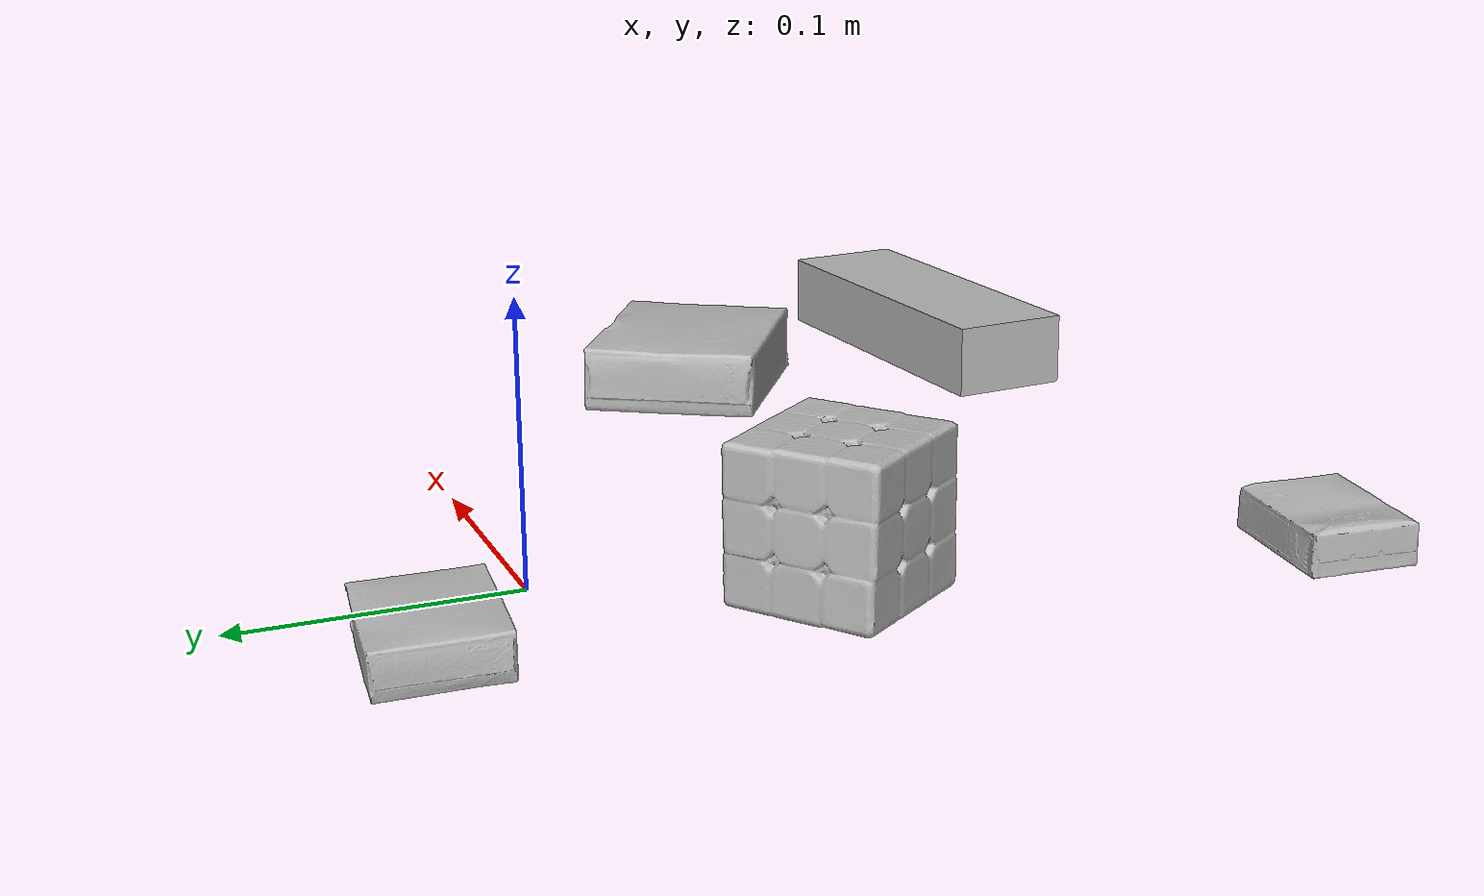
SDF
<sdf version="1.4">
  <world name="default">
    <light name="light1" type="point">
      <pose>0 0 1 0 0 0</pose>
      <diffuse>3 3 3 1</diffuse>
      <specular>3 3 3 1</specular>
    </light>
    <light name="light2" type="point">
      <pose>0 0.5 2 0 0 0</pose>
      <diffuse>1 1 1 1</diffuse>
      <specular>1 1 1 1</specular>
    </light>
    <light name="light3" type="point">
      <pose>0 0.5 2 0 0 0</pose>
      <diffuse>3 3 3 1</diffuse>
      <specular>3 3 3 1</specular>
    </light>
    <scene>
      <ambient>0.7 0.7 0.7</ambient>
    </scene>
    <model name="box1">
      <link name="link_box1">
        <collision name="default">
          <geometry>
            <mesh>
              <uri>model://jenga/collision_meshes/collision.obj</uri>
              <scale>1.0 1.0 1.0</scale>
            </mesh>
          </geometry>
          <surface>
            <friction>
              <ode>
                <mu>0.5</mu>
                <mu2>0.5</mu2>
              </ode>
            </friction>
          <contact>
        <ode>
            <max_vel>0</max_vel>
            <min_depth>0.0001</min_depth>
            <kp>1e8</kp>
        </ode>
    </contact></surface>
        </collision>
        <visual name="default">
          <geometry>
            <mesh>
              <uri>model://jenga/visual_meshes/visual.dae</uri>
              <scale>1.0 1.0 1.0</scale>
            </mesh>
          </geometry>
        </visual>
        <inertial>
          <mass>0.2062758058309555</mass>
          <pose>-2.502855807051674e-07 -0.00010250010382151231 -4.092339804628864e-05 0.0 -7.342154049184251e-07 0.0</pose>
          <inertia>
            <ixx>5.7081514e-05</ixx>
            <iyy>0.0003867828</iyy>
            <izz>0.00041292355</izz>
            <ixy>0</ixy>
            <ixz>0</ixz>
            <iyz>0</iyz>
          </inertia>
        </inertial>
      </link>
      <pose>0.22155912220478058 -0.25229254364967346 0.01499999687075615 1.167947179287154e-08 1.5496779759226337e-09 0.09159261705573399</pose>
    </model>
    <model name="box2">
      <link name="link_box2">
        <collision name="default">
          <geometry>
            <mesh>
              <uri>model://cracker_box/collision_meshes/collision.obj</uri>
              <scale>0.25 0.25 0.25</scale>
            </mesh>
          </geometry>
          <surface>
            <friction>
              <ode>
                <mu>0.5</mu>
                <mu2>0.5</mu2>
              </ode>
            </friction>
          <contact>
        <ode>
            <max_vel>0</max_vel>
            <min_depth>0.0001</min_depth>
            <kp>1e8</kp>
        </ode>
    </contact></surface>
        </collision>
        <visual name="default">
          <geometry>
            <mesh>
              <uri>model://cracker_box/visual_meshes/visual.dae</uri>
              <scale>0.25 0.25 0.25</scale>
            </mesh>
          </geometry>
        </visual>
        <inertial>
          <mass>0.023937078192830086</mass>
          <pose>0.00023660386796109378 6.358562677633017e-05 -0.00042573839891701937 -0.00031620780222672953 -0.011106490531565828 0.0025467947702904154</pose>
          <inertia>
            <ixx>3.8053279e-06</ixx>
            <iyy>6.2833433e-06</iyy>
            <izz>8.966907e-06</izz>
            <ixy>0</ixy>
            <ixz>0</ixz>
            <iyz>0</iyz>
          </inertia>
        </inertial>
      </link>
      <pose>-0.07160390168428421 -0.2674887180328369 0.009120449423789978 -0.011788031769107404 -0.007367137510912692 -0.08537823445240147</pose>
    </model>
    <model name="box3">
      <link name="link_box3">
        <collision name="default">
          <geometry>
            <mesh>
              <uri>model://pudding_box/collision_meshes/collision.obj</uri>
              <scale>0.5 0.5 0.5</scale>
            </mesh>
          </geometry>
          <surface>
            <friction>
              <ode>
                <mu>0.5</mu>
                <mu2>0.5</mu2>
              </ode>
            </friction>
          <contact>
        <ode>
            <max_vel>0</max_vel>
            <min_depth>0.0001</min_depth>
            <kp>1e8</kp>
        </ode>
    </contact></surface>
        </collision>
        <visual name="default">
          <geometry>
            <mesh>
              <uri>model://pudding_box/visual_meshes/visual.dae</uri>
              <scale>0.5 0.5 0.5</scale>
            </mesh>
          </geometry>
        </visual>
        <inertial>
          <mass>0.06577561050653458</mass>
          <pose>0.0002447410661261529 0.00040339428232982755 -0.00025944135268218815 0.005213102261421096 -0.006603797796883786 0.020079827023418362</pose>
          <inertia>
            <ixx>1.8588986e-05</ixx>
            <iyy>1.2506803e-05</iyy>
            <izz>2.7451497e-05</izz>
            <ixy>0</ixy>
            <ixz>0</ixz>
            <iyz>0</iyz>
          </inertia>
        </inertial>
      </link>
      <pose>-0.045526888221502304 0.04313332587480545 0.009862902574241161 0.02234850723299 -0.011391785221140443 -1.6634862597712898</pose>
    </model>
    <model name="box4">
      <link name="link_box4">
        <collision name="default">
          <geometry>
            <mesh>
              <uri>model://gelatin_box/collision_meshes/collision.obj</uri>
              <scale>1.0 1.0 1.0</scale>
            </mesh>
          </geometry>
          <surface>
            <friction>
              <ode>
                <mu>0.5</mu>
                <mu2>0.5</mu2>
              </ode>
            </friction>
          <contact>
        <ode>
            <max_vel>0</max_vel>
            <min_depth>0.0001</min_depth>
            <kp>1e8</kp>
        </ode>
    </contact></surface>
        </collision>
        <visual name="default">
          <geometry>
            <mesh>
              <uri>model://gelatin_box/visual_meshes/visual.dae</uri>
              <scale>1.0 1.0 1.0</scale>
            </mesh>
          </geometry>
        </visual>
        <inertial>
          <mass>0.21051041781902313</mass>
          <pose>0.000431961816502735 0.00011156871914863586 -0.0003640321083366871 -0.0010503719683328595 -0.0047558182256164224 0.016440557608480007</pose>
          <inertia>
            <ixx>0.0001486032</ixx>
            <iyy>0.00010614647</iyy>
            <izz>0.00022620716</izz>
            <ixy>0</ixy>
            <ixz>0</ixz>
            <iyz>0</iyz>
          </inertia>
        </inertial>
      </link>
      <pose>0.20204633474349976 -0.13152550160884857 0.015168312937021255 0.005597480326687241 -0.007304576117392226 0.9974952557407174</pose>
    </model>
    <model name="box5">
      <link name="link_box5">
        <collision name="default">
          <geometry>
            <mesh>
              <uri>model://rubiks_cube/collision_meshes/collision.obj</uri>
              <scale>1.0 1.0 1.0</scale>
            </mesh>
          </geometry>
          <surface>
            <friction>
              <ode>
                <mu>0.5</mu>
                <mu2>0.5</mu2>
              </ode>
            </friction>
          <contact>
        <ode>
            <max_vel>0</max_vel>
            <min_depth>0.0001</min_depth>
            <kp>1e8</kp>
        </ode>
    </contact></surface>
        </collision>
        <visual name="default">
          <geometry>
            <mesh>
              <uri>model://rubiks_cube/visual_meshes/visual.dae</uri>
              <scale>1.0 1.0 1.0</scale>
            </mesh>
          </geometry>
        </visual>
        <inertial>
          <mass>0.13810032606124878</mass>
          <pose>2.6721041649580002e-05 5.256967051536776e-05 -7.264316082000732e-06 -0.05467240103362065 -0.09813937396878175 -0.03445717948301123</pose>
          <inertia>
            <ixx>7.63097e-05</ixx>
            <iyy>7.595384e-05</iyy>
            <izz>7.694205e-05</izz>
            <ixy>0</ixy>
            <ixz>0</ixz>
            <iyz>0</iyz>
          </inertia>
        </inertial>
      </link>
      <pose>-0.04554815590381622 -0.09396888315677643 0.028678975999355316 -3.4105257094614875e-06 -1.2794488954386707e-06 -2.4910629302389022</pose>
    </model>
  <physics type="ode">
      <max_contacts>50</max_contacts>
      <ode>
        <solver>
          <type>quick</type>
          <iters>75</iters>
        </solver>
        <constraints>
          <contact_max_correcting_vel>0</contact_max_correcting_vel>
          <contact_surface_layer>0</contact_surface_layer>
        </constraints>
      </ode>
    </physics></world>
</sdf>
